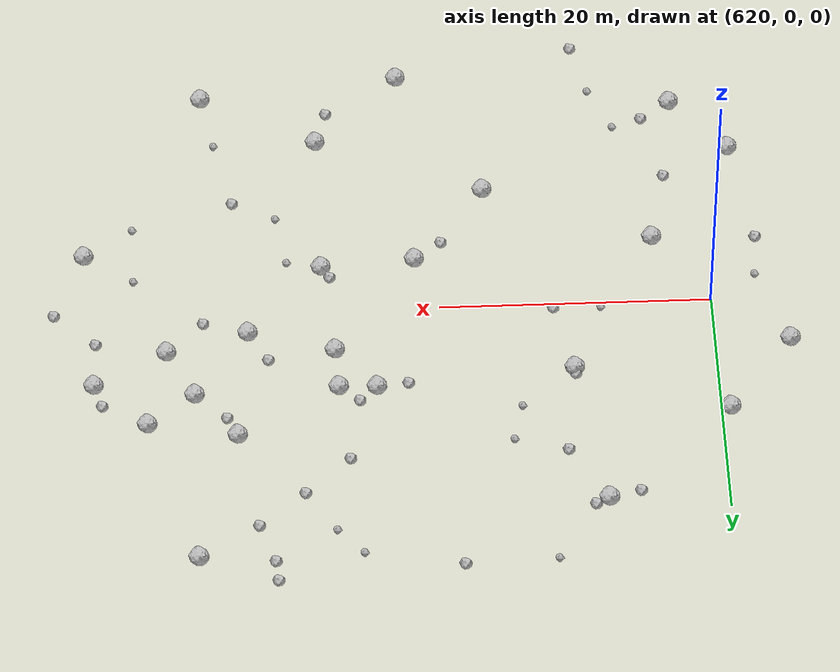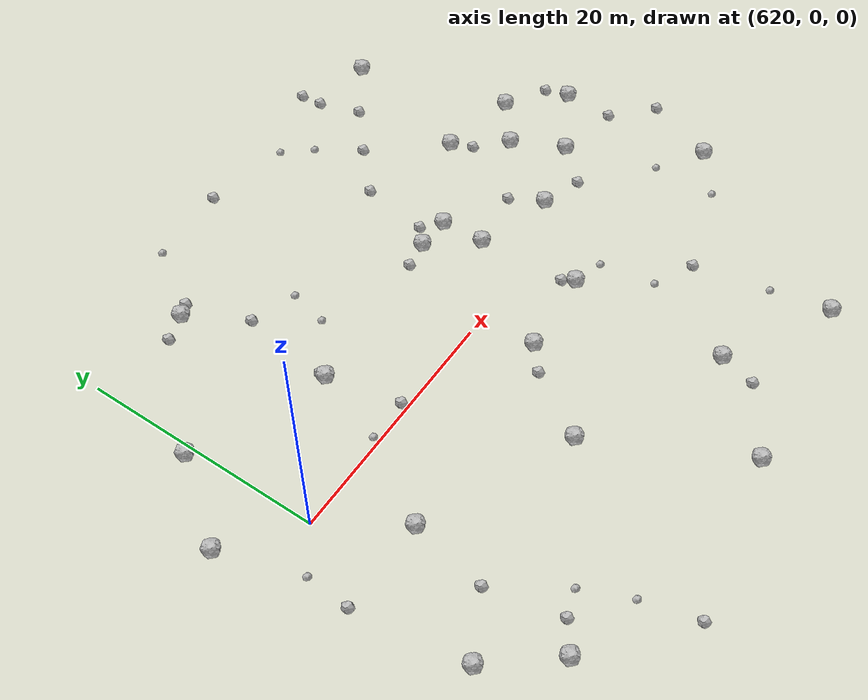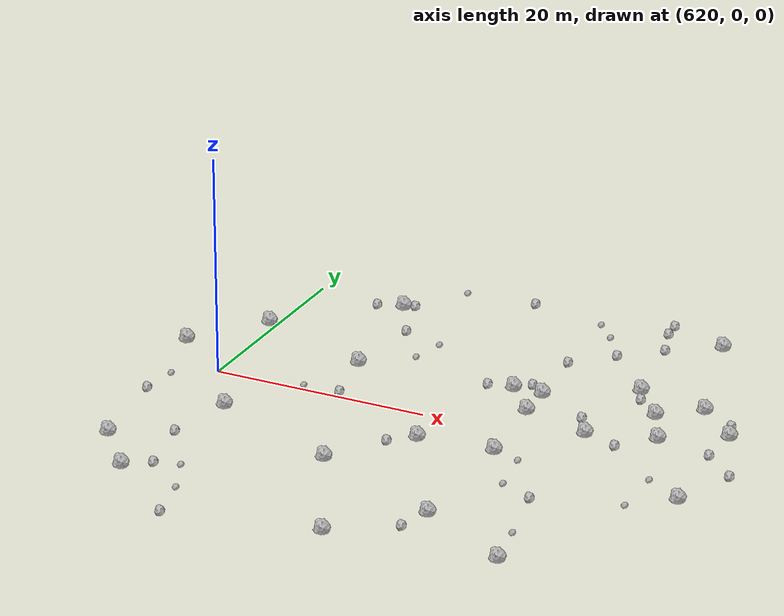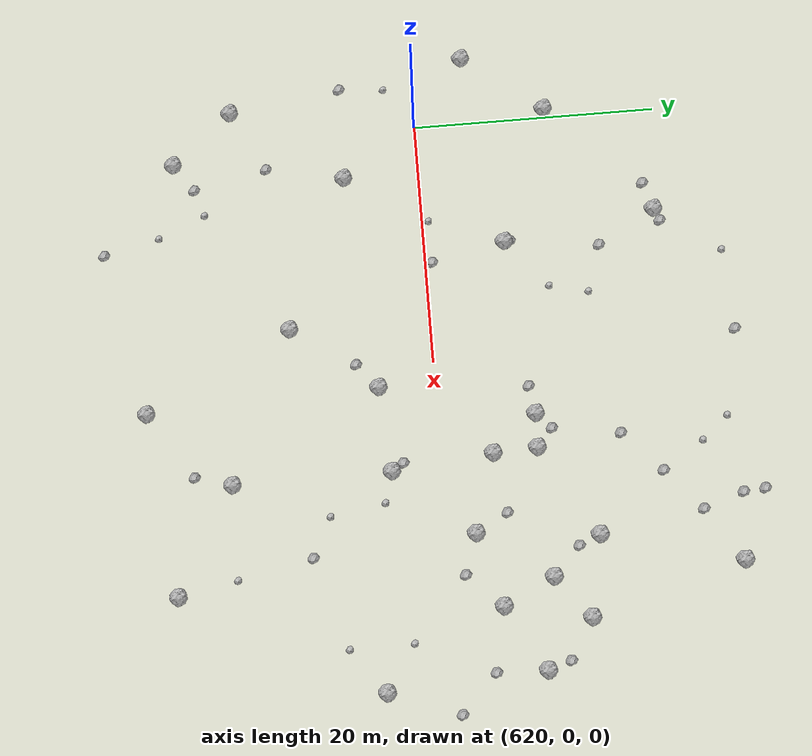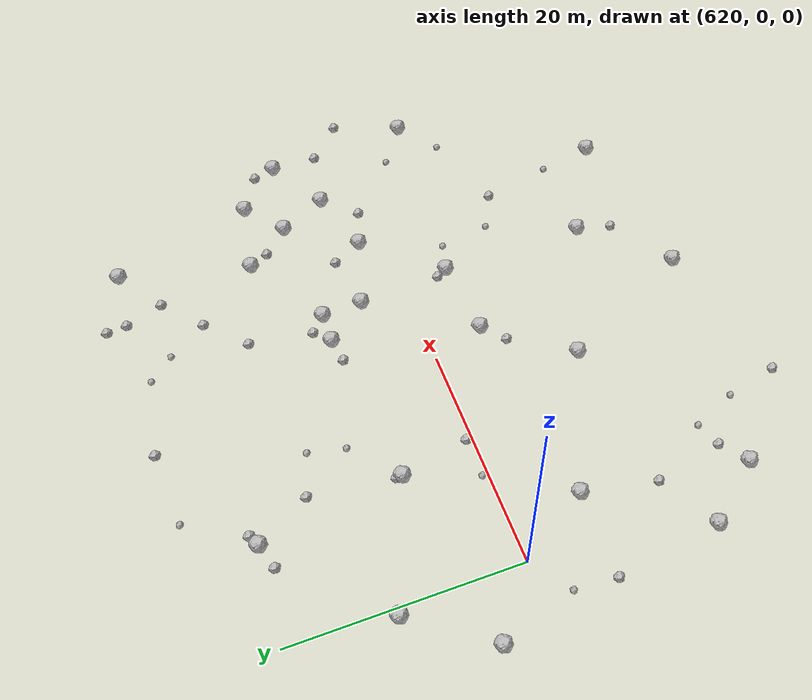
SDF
<sdf version="1.6">
 <world name="default">
  <include><uri>model://sun</uri></include>
  <model name="rock1_16_3">
   <include><uri>model://rock1</uri><pose>624.0293041199237 -6.199438737552466 0.5 0 0 0</pose></include>
  </model>
  <model name="rock1_16_4">
   <include><uri>model://rock1</uri><pose>658.0271018313214 23.6473558827291 0.5 0 0 0</pose></include>
  </model>
  <model name="rock1_16_5">
   <include><uri>model://rock1</uri><pose>614.4996411714995 4.332832590868428 0.5 0 0 0</pose></include>
  </model>
  <model name="rock1_16_6">
   <include><uri>model://rock1</uri><pose>621.8116044411141 -20.241478058774863 0.5 0 0 0</pose></include>
  </model>
  <model name="rock1_16_7">
   <include><uri>model://rock1</uri><pose>642.4855968392902 -23.56884102393805 0.5 0 0 0</pose></include>
  </model>
  <model name="rock1_16_8">
   <include><uri>model://rock1</uri><pose>660.1790435686908 4.054807611814027 0.5 0 0 0</pose></include>
  </model>
  <model name="rock1_16_9">
   <include><uri>model://rock1</uri><pose>666.2284119307967 -5.744110314031865 0.5 0 0 0</pose></include>
  </model>
  <model name="rock1_16_10">
   <include><uri>model://rock1</uri><pose>619.3575395180156 10.851815681476204 0.5 0 0 0</pose></include>
  </model>
  <model name="rock1_16_11">
   <include><uri>model://rock1</uri><pose>648.6837504581151 -4.050685004711653 0.5 0 0 0</pose></include>
  </model>
  <model name="rock1_16_12">
   <include><uri>model://rock1</uri><pose>647.6805348358126 7.840304271390671 0.5 0 0 0</pose></include>
  </model>
  <model name="rock1_16_13">
   <include><uri>model://rock1</uri><pose>641.7474218699864 -4.613115722566835 0.5 0 0 0</pose></include>
  </model>
  <model name="rock1_16_14">
   <include><uri>model://rock1</uri><pose>658.1541223189989 8.252186377396406 0.5 0 0 0</pose></include>
  </model>
  <model name="rock1_16_15">
   <include><uri>model://rock1</uri><pose>636.4114347181107 -11.535304773354603 0.5 0 0 0</pose></include>
  </model>
  <model name="rock1_16_16">
   <include><uri>model://rock1</uri><pose>657.4007100451354 -21.80682334102508 0.5 0 0 0</pose></include>
  </model>
  <model name="rock1_16_17">
   <include><uri>model://rock1</uri><pose>644.9057649797621 7.934011534772118 0.5 0 0 0</pose></include>
  </model>
  <model name="rock1_16_18">
   <include><uri>model://rock1</uri><pose>630.4474884405322 6.6216449728307225 0.5 0 0 0</pose></include>
  </model>
  <model name="rock1_16_19">
   <include><uri>model://rock1</uri><pose>661.6042316642711 11.003501809980982 0.5 0 0 0</pose></include>
  </model>
  <model name="rock1_16_20">
   <include><uri>model://rock1</uri><pose>628.659695570812 19.17500029150716 0.5 0 0 0</pose></include>
  </model>
  <model name="rock1_16_21">
   <include><uri>model://rock1</uri><pose>647.8607035246312 4.235011976699134 0.5 0 0 0</pose></include>
  </model>
  <model name="rock1_16_22">
   <include><uri>model://rock1</uri><pose>617.7162643577337 -15.281356920735217 0.5 0 0 0</pose></include>
  </model>
  <model name="rock1_16_23">
   <include><uri>model://rock1</uri><pose>654.2062267471945 2.3219618121914323 0.5 0 0 0</pose></include>
  </model>
  <model name="rock1_16_24">
   <include><uri>model://rock1</uri><pose>665.4790559732639 7.1138977509177295 0.5 0 0 0</pose></include>
  </model>
  <model name="rock1_16_25">
   <include><uri>model://rock1</uri><pose>648.7836172311117 -16.964183778079192 0.5 0 0 0</pose></include>
  </model>
  <model name="rock1_16_26">
   <include><uri>model://rock1</uri><pose>655.0921388720856 12.239028437668786 0.5 0 0 0</pose></include>
  </model>
  <model name="rock2_16_0">
   <include><uri>model://rock2</uri><pose>655.8241071465003 10.524021200359876 0.3 0 0 0</pose></include>
  </model>
  <model name="rock2_16_1">
   <include><uri>model://rock2</uri><pose>657.4518096167442 1.2290624604013765 0.3 0 0 0</pose></include>
  </model>
  <model name="rock2_16_2">
   <include><uri>model://rock2</uri><pose>646.1717168852699 9.168592733538837 0.3 0 0 0</pose></include>
  </model>
  <model name="rock2_16_3">
   <include><uri>model://rock2</uri><pose>664.8565805206505 9.046559589618674 0.3 0 0 0</pose></include>
  </model>
  <model name="rock2_16_4">
   <include><uri>model://rock2</uri><pose>626.3439976021461 18.524108067083368 0.3 0 0 0</pose></include>
  </model>
  <model name="rock2_16_5">
   <include><uri>model://rock2</uri><pose>665.3383244445171 3.0259040032901794 0.3 0 0 0</pose></include>
  </model>
  <model name="rock2_16_6">
   <include><uri>model://rock2</uri><pose>647.9095334291814 -19.977917339878417 0.3 0 0 0</pose></include>
  </model>
  <model name="rock2_16_7">
   <include><uri>model://rock2</uri><pose>628.9830182531934 -26.336794735075166 0.3 0 0 0</pose></include>
  </model>
  <model name="rock2_16_8">
   <include><uri>model://rock2</uri><pose>668.4062192115255 0.06527354788840611 0.3 0 0 0</pose></include>
  </model>
  <model name="rock2_16_9">
   <include><uri>model://rock2</uri><pose>647.0183928912817 14.724138503188655 0.3 0 0 0</pose></include>
  </model>
  <model name="rock2_16_10">
   <include><uri>model://rock2</uri><pose>630.3832894247255 7.125401387740858 0.3 0 0 0</pose></include>
  </model>
  <model name="rock2_16_11">
   <include><uri>model://rock2</uri><pose>650.3255554516213 17.87994664845499 0.3 0 0 0</pose></include>
  </model>
  <model name="rock2_16_12">
   <include><uri>model://rock2</uri><pose>642.5833049178929 7.602272348775507 0.3 0 0 0</pose></include>
  </model>
  <model name="rock2_16_13">
   <include><uri>model://rock2</uri><pose>655.1423501791796 -10.854001015832416 0.3 0 0 0</pose></include>
  </model>
  <model name="rock2_16_14">
   <include><uri>model://rock2</uri><pose>624.0247823374432 -18.61539196111186 0.3 0 0 0</pose></include>
  </model>
  <model name="rock2_16_15">
   <include><uri>model://rock2</uri><pose>652.7345732682777 4.987301007728668 0.3 0 0 0</pose></include>
  </model>
  <model name="rock2_16_16">
   <include><uri>model://rock2</uri><pose>639.1872609119229 24.86939781782808 0.3 0 0 0</pose></include>
  </model>
  <model name="rock2_16_17">
   <include><uri>model://rock2</uri><pose>652.4243170568947 25.92546652945 0.3 0 0 0</pose></include>
  </model>
  <model name="rock2_16_18">
   <include><uri>model://rock2</uri><pose>653.6842068384399 20.816316773848968 0.3 0 0 0</pose></include>
  </model>
  <model name="rock2_16_19">
   <include><uri>model://rock2</uri><pose>648.0563326610319 -3.0725454718606606 0.3 0 0 0</pose></include>
  </model>
  <model name="rock2_16_20">
   <include><uri>model://rock2</uri><pose>616.315002768427 -6.02475772937273 0.3 0 0 0</pose></include>
  </model>
  <model name="rock2_16_21">
   <include><uri>model://rock2</uri><pose>629.6306911652306 19.651244065866322 0.3 0 0 0</pose></include>
  </model>
  <model name="rock2_16_22">
   <include><uri>model://rock2</uri><pose>652.5811573508818 24.144961820293553 0.3 0 0 0</pose></include>
  </model>
  <model name="rock2_16_23">
   <include><uri>model://rock2</uri><pose>639.7035786637408 -6.30266541884188 0.3 0 0 0</pose></include>
  </model>
  <model name="rock2_16_24">
   <include><uri>model://rock2</uri><pose>631.6873998008041 0.5819925558227084 0.3 0 0 0</pose></include>
  </model>
  <model name="rock2_16_25">
   <include><uri>model://rock2</uri><pose>622.7126385085318 -12.571139542218308 0.3 0 0 0</pose></include>
  </model>
  <model name="rock2_16_26">
   <include><uri>model://rock2</uri><pose>631.2902372304354 14.441197557152648 0.3 0 0 0</pose></include>
  </model>
  <model name="rock3_16_0">
   <include><uri>model://rock3</uri><pose>662.6060175423212 -8.51465017134316 0.2 0 0 0</pose></include>
  </model>
  <model name="rock3_16_1">
   <include><uri>model://rock3</uri><pose>616.5838491769864 -2.378197619985407 0.2 0 0 0</pose></include>
  </model>
  <model name="rock3_16_2">
   <include><uri>model://rock3</uri><pose>626.2039562264589 -17.94374154490179 0.2 0 0 0</pose></include>
  </model>
  <model name="rock3_16_3">
   <include><uri>model://rock3</uri><pose>656.4304917404856 -17.038229453920625 0.2 0 0 0</pose></include>
  </model>
  <model name="rock3_16_4">
   <include><uri>model://rock3</uri><pose>632.4821152358157 24.479099150526245 0.2 0 0 0</pose></include>
  </model>
  <model name="rock3_16_5">
   <include><uri>model://rock3</uri><pose>628.1583401724163 0.5201664842902041 0.2 0 0 0</pose></include>
  </model>
  <model name="rock3_16_6">
   <include><uri>model://rock3</uri><pose>634.3748166387633 10.005071653410113 0.2 0 0 0</pose></include>
  </model>
  <model name="rock3_16_7">
   <include><uri>model://rock3</uri><pose>646.2495960707774 23.464881709238362 0.2 0 0 0</pose></include>
  </model>
  <model name="rock3_16_8">
   <include><uri>model://rock3</uri><pose>651.1709888753162 -4.787767243253128 0.2 0 0 0</pose></include>
  </model>
  <model name="rock3_16_9">
   <include><uri>model://rock3</uri><pose>635.1109056940955 13.191817706818455 0.2 0 0 0</pose></include>
  </model>
  <model name="rock3_16_10">
   <include><uri>model://rock3</uri><pose>648.1179167179379 21.28728841203725 0.2 0 0 0</pose></include>
  </model>
  <model name="rock3_16_11">
   <include><uri>model://rock3</uri><pose>651.9191756402447 -9.290518933461193 0.2 0 0 0</pose></include>
  </model>
  <model name="rock3_16_12">
   <include><uri>model://rock3</uri><pose>662.5384832476019 -3.312413946704261 0.2 0 0 0</pose></include>
  </model>
  <model name="rock3_16_13">
   <include><uri>model://rock3</uri><pose>627.8706442094365 -21.812705693503403 0.2 0 0 0</pose></include>
  </model>
 </world>
</sdf>
